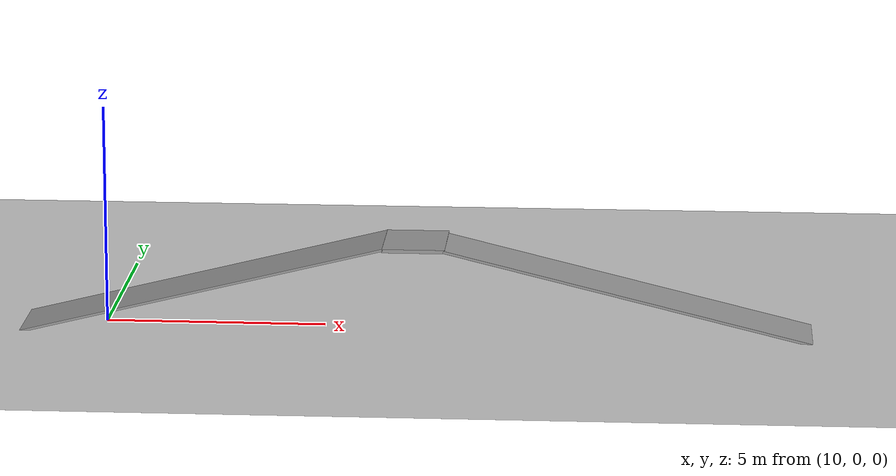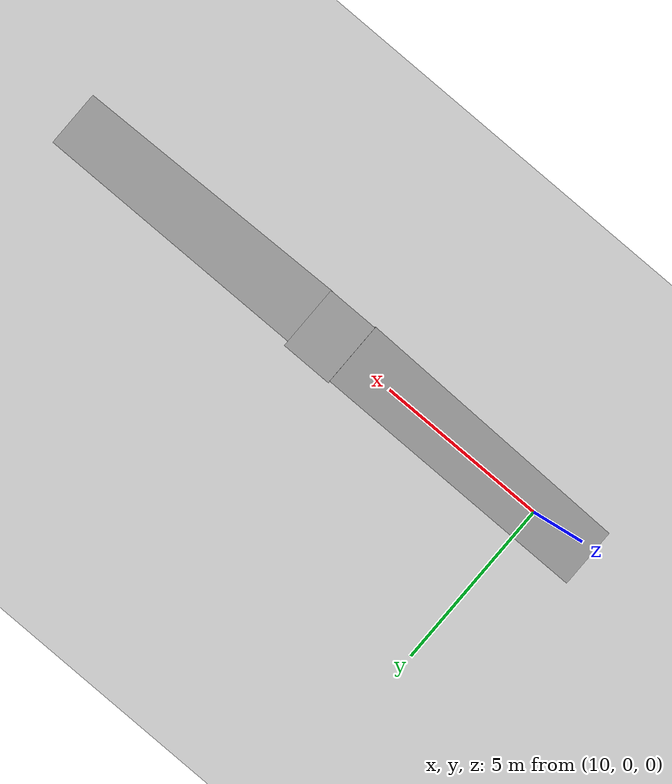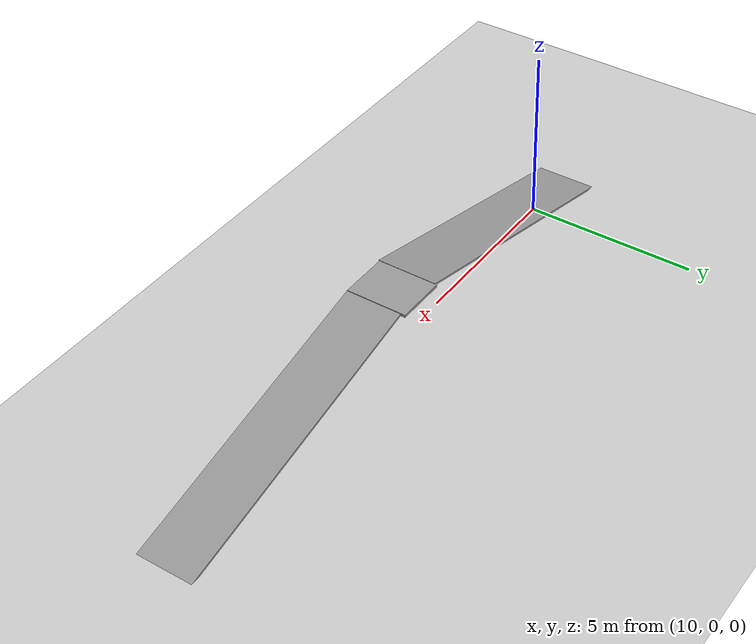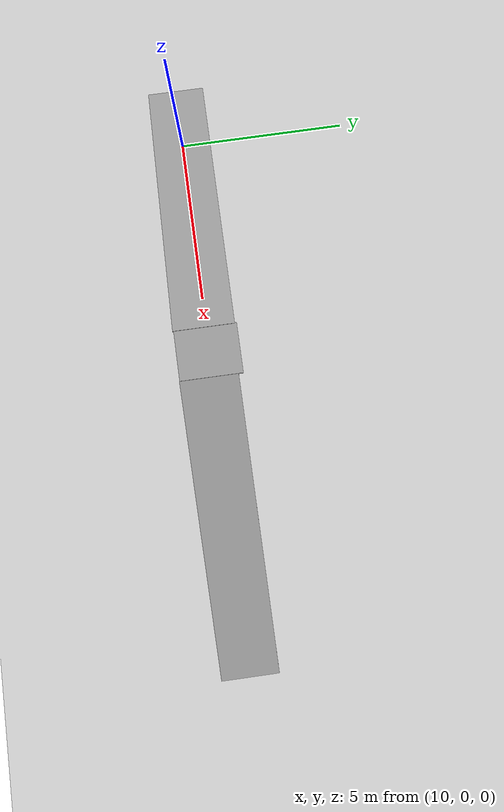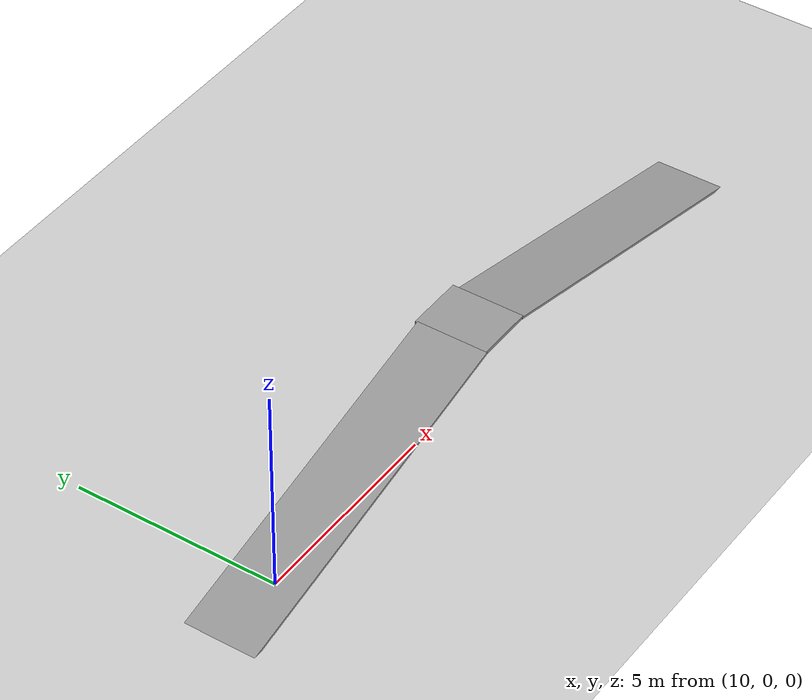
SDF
<sdf version="1.7">
 <world name="default">
  <plugin name="xbot2_clock" filename="libxbot2_gz_clock.so"/>
  <gravity>0 0 -9.81</gravity>
  <model name="ground_plane">
   <static>1</static>
   <link name="link">
    <collision name="collision">
     <geometry><plane><normal>0 0 1</normal><size>100 100</size></plane></geometry>
     <surface><friction><ode><mu>1</mu><mu2>1</mu2></ode></friction></surface>
    </collision>
    <visual name="visual">
     <cast_shadows>0</cast_shadows>
     <geometry><plane><normal>0 0 1</normal><size>100 100</size></plane></geometry>
     <material>
      <script><uri>file://media/materials/scripts/gazebo.material</uri><name>Gazebo/Grey</name></script>
     </material>
    </visual>
   </link>
  </model>
  <light name="sun" type="directional">
   <pose>0 0 10 0 -0 0</pose>
   <diffuse>0.8 0.8 0.8 1</diffuse>
   <specular>0.2 0.2 0.2 1</specular>
   <attenuation>
    <range>1000</range>
    <constant>0.9</constant>
    <linear>0.01</linear>
    <quadratic>0.001</quadratic>
   </attenuation>
   <direction>-0.5 0.1 -0.9</direction>
   <spot><inner_angle>0</inner_angle><outer_angle>0</outer_angle><falloff>0</falloff></spot>
  </light>
  <physics name="update_rate" type="ode">
   <real_time_update_rate>2000</real_time_update_rate>
   <max_step_size>0.0005</max_step_size>
   <max_contacts>5</max_contacts>
   <bullet>
    <solver><iters>100</iters><sor>1.55</sor><type>sequential_impulse</type></solver>
    <constraints>
     <contact_surface_layer>0.2</contact_surface_layer>
     <cfm>0.005</cfm>
     <erp>0.2</erp>
     <split_impulse>1</split_impulse>
     <split_impulse_penetration_threshold>-0.01</split_impulse_penetration_threshold>
    </constraints>
   </bullet>
   <ode>
    <solver>
     <iters>50</iters>
     <sor>1.2</sor>
     <type>quick</type>
     <use_dynamic_moi_rescaling>0</use_dynamic_moi_rescaling>
    </solver>
    <constraints>
     <contact_surface_layer>0.0002</contact_surface_layer>
     <contact_max_correcting_vel>500</contact_max_correcting_vel>
     <cfm>1e-06</cfm>
     <erp>0.3</erp>
    </constraints>
   </ode>
   <real_time_factor>1</real_time_factor>
  </physics>
  <magnetic_field>6e-06 2.3e-05 -4.2e-05</magnetic_field>
  <atmosphere type="adiabatic"/>
  <scene><ambient>0.4 0.4 0.4 1</ambient><background>0.7 0.7 0.7 1</background><shadows>1</shadows></scene>
  <spherical_coordinates>
   <surface_model>EARTH_WGS84</surface_model>
   <latitude_deg>0</latitude_deg>
   <longitude_deg>0</longitude_deg>
   <elevation>0</elevation>
   <heading_deg>0</heading_deg>
  </spherical_coordinates>
  <model name="unit_box">
   <pose>12.2365 -0 0.976008 0 -0.242644 0</pose>
   <link name="link">
    <inertial>
     <mass>1</mass>
     <inertia>
      <ixx>0.166667</ixx>
      <ixy>0</ixy>
      <ixz>0</ixz>
      <iyy>0.166667</iyy>
      <iyz>0</iyz>
      <izz>0.166667</izz>
     </inertia>
    </inertial>
    <collision name="collision"><geometry><box><size>8.50507 1.73994 0.0550713</size></box></geometry></collision>
    <visual name="visual">
     <geometry><box><size>8.50507 1.73994 0.0550713</size></box></geometry>
     <material>
      <script><name>Gazebo/Grey</name><uri>file://media/materials/scripts/gazebo.material</uri></script>
     </material>
    </visual>
    <kinematic>1</kinematic>
   </link>
  </model>
  <model name="unit_box_0">
   <pose>17.0566 0.039697 1.97307 0 -0 0</pose>
   <link name="link">
    <inertial>
     <mass>1</mass>
     <inertia>
      <ixx>0.166667</ixx>
      <ixy>0</ixy>
      <ixz>0</ixz>
      <iyy>0.166667</iyy>
      <iyz>0</iyz>
      <izz>0.166667</izz>
     </inertia>
    </inertial>
    <collision name="collision"><geometry><box><size>1.42851 1.76563 0.082004</size></box></geometry></collision>
    <visual name="visual">
     <geometry><box><size>1.42851 1.76563 0.082004</size></box></geometry>
     <material>
      <script><name>Gazebo/Grey</name><uri>file://media/materials/scripts/gazebo.material</uri></script>
     </material>
    </visual>
    <kinematic>1</kinematic>
   </link>
  </model>
  <model name="unit_box_1">
   <pose>22.0641 -0.031858 0.920452 0 0.238483 0</pose>
   <link name="link">
    <inertial>
     <mass>1</mass>
     <inertia>
      <ixx>0.166667</ixx>
      <ixy>0</ixy>
      <ixz>0</ixz>
      <iyy>0.166667</iyy>
      <iyz>0</iyz>
      <izz>0.166667</izz>
     </inertia>
    </inertial>
    <collision name="collision"><geometry><box><size>8.90946 1.64231 0.0580747</size></box></geometry></collision>
    <visual name="visual">
     <geometry><box><size>8.90946 1.64231 0.0580747</size></box></geometry>
     <material>
      <script><name>Gazebo/Grey</name><uri>file://media/materials/scripts/gazebo.material</uri></script>
     </material>
    </visual>
    <kinematic>1</kinematic>
   </link>
  </model>
 </world>
</sdf>
